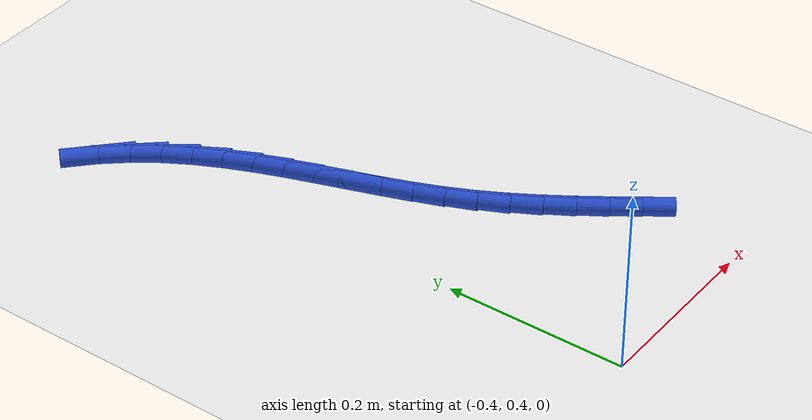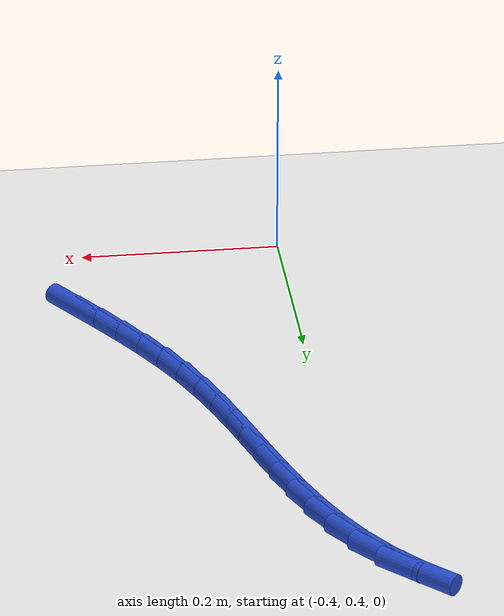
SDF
<sdf version="1.6">
 <world name="default">
  <model name="ground_plane">
   <static>1</static>
   <link name="link">
    <collision name="collision">
     <geometry><plane><normal>0 0 1</normal><size>100 100</size></plane></geometry>
     <surface><friction><ode><mu>100</mu><mu2>50</mu2></ode></friction></surface>
    </collision>
    <visual name="visual">
     <cast_shadows>0</cast_shadows>
     <geometry><plane><normal>0 0 1</normal><size>100 100</size></plane></geometry>
     <material>
      <script><uri>file://media/materials/scripts/gazebo.material</uri><name>Gazebo/WhiteGlow</name></script>
     </material>
    </visual>
   </link>
  </model>
  <model name="line">
   <link name="link_17">
    <pose>-0.1874834383942709 0.5185295056337073 0.01 0 1.57 -0.9522224159867091</pose>
    <collision name="collision">
     <geometry><cylinder><radius>0.01</radius><length>0.08</length></cylinder></geometry>
    </collision>
    <visual name="visual">
     <material>
      <script><name>Gazebo/Blue</name><uri>file://media/materials/scripts/gazebo.material</uri></script>
     </material>
     <geometry><cylinder><radius>0.01</radius><length>0.08</length></cylinder></geometry>
    </visual>
   </link>
   <link name="link_18">
    <pose>-0.20696704181414527 0.5459034106042228 0.01 0 1.57 -0.9703160737288602</pose>
    <collision name="collision">
     <geometry><cylinder><radius>0.01</radius><length>0.08</length></cylinder></geometry>
    </collision>
    <visual name="visual">
     <material>
      <script><name>Gazebo/Blue</name><uri>file://media/materials/scripts/gazebo.material</uri></script>
     </material>
     <geometry><cylinder><radius>0.01</radius><length>0.08</length></cylinder></geometry>
    </visual>
   </link>
   <link name="link_19">
    <pose>-0.22592043475596893 0.573578978018985 0.01 0 1.57 -0.9975407189631754</pose>
    <collision name="collision">
     <geometry><cylinder><radius>0.01</radius><length>0.08</length></cylinder></geometry>
    </collision>
    <visual name="visual">
     <material>
      <script><name>Gazebo/Blue</name><uri>file://media/materials/scripts/gazebo.material</uri></script>
     </material>
     <geometry><cylinder><radius>0.01</radius><length>0.08</length></cylinder></geometry>
    </visual>
   </link>
   <link name="link_20">
    <pose>-0.24406643640070458 0.6016874165048003 0.01 0 1.57 -1.0340284078410977</pose>
    <collision name="collision">
     <geometry><cylinder><radius>0.01</radius><length>0.08</length></cylinder></geometry>
    </collision>
    <visual name="visual">
     <material>
      <script><name>Gazebo/Blue</name><uri>file://media/materials/scripts/gazebo.material</uri></script>
     </material>
     <geometry><cylinder><radius>0.01</radius><length>0.08</length></cylinder></geometry>
    </visual>
   </link>
   <link name="link_21">
    <pose>-0.26112786592931464 0.6303599346884744 0.01 0 1.57 -1.079862702196462</pose>
    <collision name="collision">
     <geometry><cylinder><radius>0.01</radius><length>0.08</length></cylinder></geometry>
    </collision>
    <visual name="visual">
     <material>
      <script><name>Gazebo/Blue</name><uri>file://media/materials/scripts/gazebo.material</uri></script>
     </material>
     <geometry><cylinder><radius>0.01</radius><length>0.08</length></cylinder></geometry>
    </visual>
   </link>
   <link name="link_22">
    <pose>-0.2768275425227618 0.6597277411968137 0.01 0 1.57 -1.1344654937425382</pose>
    <collision name="collision">
     <geometry><cylinder><radius>0.01</radius><length>0.08</length></cylinder></geometry>
    </collision>
    <visual name="visual">
     <material>
      <script><name>Gazebo/Blue</name><uri>file://media/materials/scripts/gazebo.material</uri></script>
     </material>
     <geometry><cylinder><radius>0.01</radius><length>0.08</length></cylinder></geometry>
    </visual>
   </link>
   <link name="link_23">
    <pose>-0.2909037059516896 0.6899142877210382 0.01 0 1.57 -1.1857438028348144</pose>
    <collision name="collision">
     <geometry><cylinder><radius>0.01</radius><length>0.08</length></cylinder></geometry>
    </collision>
    <visual name="visual">
     <material>
      <script><name>Gazebo/Blue</name><uri>file://media/materials/scripts/gazebo.material</uri></script>
     </material>
     <geometry><cylinder><radius>0.01</radius><length>0.08</length></cylinder></geometry>
    </visual>
   </link>
   <link name="link_24">
    <pose>-0.30344767789450816 0.7208654170754177 0.01 0 1.57 -1.2218448732244316</pose>
    <collision name="collision">
     <geometry><cylinder><radius>0.01</radius><length>0.08</length></cylinder></geometry>
    </collision>
    <visual name="visual">
     <material>
      <script><name>Gazebo/Blue</name><uri>file://media/materials/scripts/gazebo.material</uri></script>
     </material>
     <geometry><cylinder><radius>0.01</radius><length>0.08</length></cylinder></geometry>
    </visual>
   </link>
   <link name="link_25">
    <pose>-0.31490297994188227 0.7523498068626908 0.01 0 1.57 -1.2424753589264126</pose>
    <collision name="collision">
     <geometry><cylinder><radius>0.01</radius><length>0.08</length></cylinder></geometry>
    </collision>
    <visual name="visual">
     <material>
      <script><name>Gazebo/Blue</name><uri>file://media/materials/scripts/gazebo.material</uri></script>
     </material>
     <geometry><cylinder><radius>0.01</radius><length>0.08</length></cylinder></geometry>
    </visual>
   </link>
   <link name="link_26">
    <pose>-0.3257283778747088 0.7841284664832671 0.01 0 1.57 -1.2478320888802241</pose>
    <collision name="collision">
     <geometry><cylinder><radius>0.01</radius><length>0.08</length></cylinder></geometry>
    </collision>
    <visual name="visual">
     <material>
      <script><name>Gazebo/Blue</name><uri>file://media/materials/scripts/gazebo.material</uri></script>
     </material>
     <geometry><cylinder><radius>0.01</radius><length>0.08</length></cylinder></geometry>
    </visual>
   </link>
   <link name="link_27">
    <pose>-0.33638263747388486 0.8159624053375569 0.01 0 1.57 -1.2379459815192784</pose>
    <collision name="collision">
     <geometry><cylinder><radius>0.01</radius><length>0.08</length></cylinder></geometry>
    </collision>
    <visual name="visual">
     <material>
      <script><name>Gazebo/Blue</name><uri>file://media/materials/scripts/gazebo.material</uri></script>
     </material>
     <geometry><cylinder><radius>0.01</radius><length>0.08</length></cylinder></geometry>
    </visual>
   </link>
   <link name="link_28">
    <pose>-0.3473245245203075 0.8476126328259703 0.01 0 1.57 -1.2126446232018757</pose>
    <collision name="collision">
     <geometry><cylinder><radius>0.01</radius><length>0.08</length></cylinder></geometry>
    </collision>
    <visual name="visual">
     <material>
      <script><name>Gazebo/Blue</name><uri>file://media/materials/scripts/gazebo.material</uri></script>
     </material>
     <geometry><cylinder><radius>0.01</radius><length>0.08</length></cylinder></geometry>
    </visual>
   </link>
   <link name="link_29">
    <pose>-0.3590128047948737 0.8788401583489173 0.01 0 1.57 -1.1716178148179184</pose>
    <collision name="collision">
     <geometry><cylinder><radius>0.01</radius><length>0.08</length></cylinder></geometry>
    </collision>
    <visual name="visual">
     <material>
      <script><name>Gazebo/Blue</name><uri>file://media/materials/scripts/gazebo.material</uri></script>
     </material>
     <geometry><cylinder><radius>0.01</radius><length>0.08</length></cylinder></geometry>
    </visual>
   </link>
   <link name="link_30">
    <pose>-0.37190624407848044 0.909405991306808 0.01 0 1.57 -1.1145980190374123</pose>
    <collision name="collision">
     <geometry><cylinder><radius>0.01</radius><length>0.08</length></cylinder></geometry>
    </collision>
    <visual name="visual">
     <material>
      <script><name>Gazebo/Blue</name><uri>file://media/materials/scripts/gazebo.material</uri></script>
     </material>
     <geometry><cylinder><radius>0.01</radius><length>0.08</length></cylinder></geometry>
    </visual>
   </link>
   <link name="link_31">
    <pose>-0.38646360815202485 0.9390711411000523 0.01 0 1.57 -1.0416712162581887</pose>
    <collision name="collision">
     <geometry><cylinder><radius>0.01</radius><length>0.08</length></cylinder></geometry>
    </collision>
    <visual name="visual">
     <material>
      <script><name>Gazebo/Blue</name><uri>file://media/materials/scripts/gazebo.material</uri></script>
     </material>
     <geometry><cylinder><radius>0.01</radius><length>0.08</length></cylinder></geometry>
    </visual>
   </link>
   <link name="link_32">
    <pose>-0.4031436627964038 0.9675966171290603 0.01 0 1.57 -0.9537021575149164</pose>
    <collision name="collision">
     <geometry><cylinder><radius>0.01</radius><length>0.08</length></cylinder></geometry>
    </collision>
    <visual name="visual">
     <material>
      <script><name>Gazebo/Blue</name><uri>file://media/materials/scripts/gazebo.material</uri></script>
     </material>
     <geometry><cylinder><radius>0.01</radius><length>0.08</length></cylinder></geometry>
    </visual>
   </link>
   <link name="link_33">
    <pose>-0.4224051737925145 0.9947434287942423 0.01 0 1.57 -0.855158552038782</pose>
    <collision name="collision">
     <geometry><cylinder><radius>0.01</radius><length>0.08</length></cylinder></geometry>
    </collision>
    <visual name="visual">
     <material>
      <script><name>Gazebo/Blue</name><uri>file://media/materials/scripts/gazebo.material</uri></script>
     </material>
     <geometry><cylinder><radius>0.01</radius><length>0.08</length></cylinder></geometry>
    </visual>
   </link>
   <link name="link_34">
    <pose>-0.4446011126649982 1.0202742139274263 0.01 0 1.57 -0.7593038871052598</pose>
    <collision name="collision">
     <geometry><cylinder><radius>0.01</radius><length>0.08</length></cylinder></geometry>
    </collision>
    <visual name="visual">
     <material>
      <script><name>Gazebo/Blue</name><uri>file://media/materials/scripts/gazebo.material</uri></script>
     </material>
     <geometry><cylinder><radius>0.01</radius><length>0.08</length></cylinder></geometry>
    </visual>
   </link>
  </model>
 </world>
</sdf>
